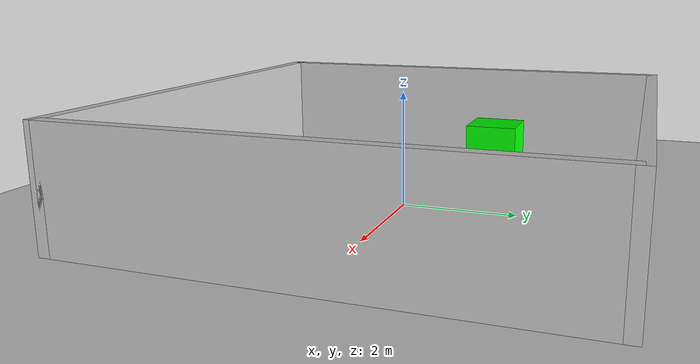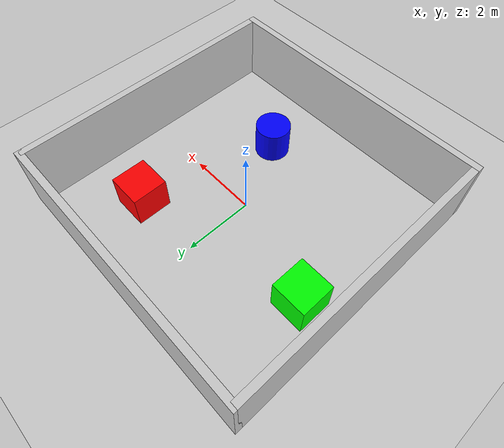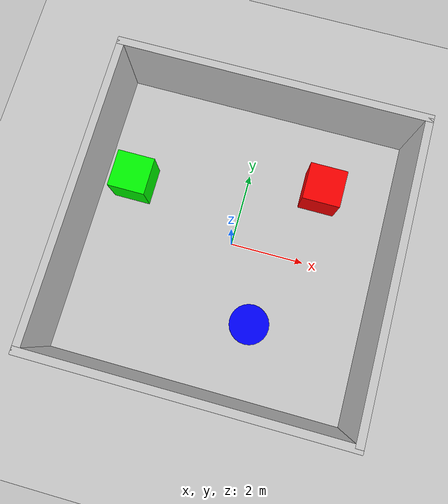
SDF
<?xml version="1.0" ?>
<sdf version="1.5">
  <world name="default">
    <!-- A global light source -->
    <include>
      <uri>model://sun</uri>
    </include>

    <!-- Ground plane -->
    <include>
      <uri>model://ground_plane</uri>
    </include>

    <!-- Some obstacles for navigation -->
    <model name="box1">
      <pose>2 2 0.5 0 0 0</pose>
      <static>true</static>
      <link name="link">
        <collision name="collision">
          <geometry>
            <box>
              <size>1 1 1</size>
            </box>
          </geometry>
        </collision>
        <visual name="visual">
          <geometry>
            <box>
              <size>1 1 1</size>
            </box>
          </geometry>
          <material>
            <ambient>1 0 0 1</ambient>
          </material>
        </visual>
      </link>
    </model>

    <model name="box2">
      <pose>-3 1 0.5 0 0 0</pose>
      <static>true</static>
      <link name="link">
        <collision name="collision">
          <geometry>
            <box>
              <size>1 1 1</size>
            </box>
          </geometry>
        </collision>
        <visual name="visual">
          <geometry>
            <box>
              <size>1 1 1</size>
            </box>
          </geometry>
          <material>
            <ambient>0 1 0 1</ambient>
          </material>
        </visual>
      </link>
    </model>

    <model name="cylinder1">
      <pose>1 -2 0.5 0 0 0</pose>
      <static>true</static>
      <link name="link">
        <collision name="collision">
          <geometry>
            <cylinder>
              <radius>0.5</radius>
              <length>1</length>
            </cylinder>
          </geometry>
        </collision>
        <visual name="visual">
          <geometry>
            <cylinder>
              <radius>0.5</radius>
              <length>1</length>
            </cylinder>
          </geometry>
          <material>
            <ambient>0 0 1 1</ambient>
          </material>
        </visual>
      </link>
    </model>

    <model name="north_wall">
      <pose>0 4 1 0 0 0</pose>
      <static>true</static>
      <link name="link">
        <collision name="collision">
          <geometry>
            <box>
              <size>8.2 0.2 2</size>
            </box>
          </geometry>
        </collision>
        <visual name="visual">
          <geometry>
            <box>
              <size>8.2 0.2 2</size>
            </box>
          </geometry>
          <material>
            <ambient>0.8 0.8 0.8 1</ambient>
          </material>
        </visual>
      </link>
    </model>

    <model name="south_wall">
      <pose>0 -4 1 0 0 0</pose>
      <static>true</static>
      <link name="link">
        <collision name="collision">
          <geometry>
            <box>
              <size>8.2 0.2 2</size>
            </box>
          </geometry>
        </collision>
        <visual name="visual">
          <geometry>
            <box>
              <size>8.2 0.2 2</size>
            </box>
          </geometry>
          <material>
            <ambient>0.8 0.8 0.8 1</ambient>
          </material>
        </visual>
      </link>
    </model>

    <model name="east_wall">
      <pose>4 0 1 0 0 0</pose>
      <static>true</static>
      <link name="link">
        <collision name="collision">
          <geometry>
            <box>
              <size>0.2 8 2</size>
            </box>
          </geometry>
        </collision>
        <visual name="visual">
          <geometry>
            <box>
              <size>0.2 8 2</size>
            </box>
          </geometry>
          <material>
            <ambient>0.8 0.8 0.8 1</ambient>
          </material>
        </visual>
      </link>
    </model>

    <model name="west_wall">
      <pose>-4 0 1 0 0 0</pose>
      <static>true</static>
      <link name="link">
        <collision name="collision">
          <geometry>
            <box>
              <size>0.2 8 2</size>
            </box>
          </geometry>
        </collision>
        <visual name="visual">
          <geometry>
            <box>
              <size>0.2 8 2</size>
            </box>
          </geometry>
          <material>
            <ambient>0.8 0.8 0.8 1</ambient>
          </material>
        </visual>
      </link>
    </model>

    <!-- Physics -->
    <physics type="ode">
      <real_time_update_rate>1000.0</real_time_update_rate>
      <max_step_size>0.001</max_step_size>
      <real_time_factor>1</real_time_factor>
      <ode>
        <solver>
          <type>quick</type>
          <iters>150</iters>
          <precon_iters>0</precon_iters>
          <sor>1.400000</sor>
          <use_dynamic_moi_rescaling>1</use_dynamic_moi_rescaling>
        </solver>
        <constraints>
          <cfm>0.00001</cfm>
          <erp>0.2</erp>
          <contact_max_correcting_vel>2000.000000</contact_max_correcting_vel>
          <contact_surface_layer>0.01000</contact_surface_layer>
        </constraints>
      </ode>
    </physics>

  </world>
</sdf>
